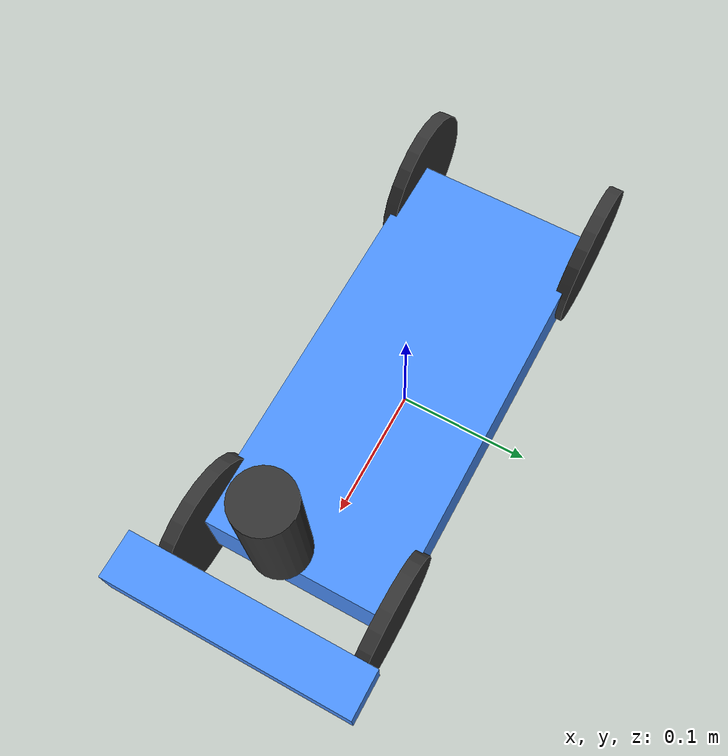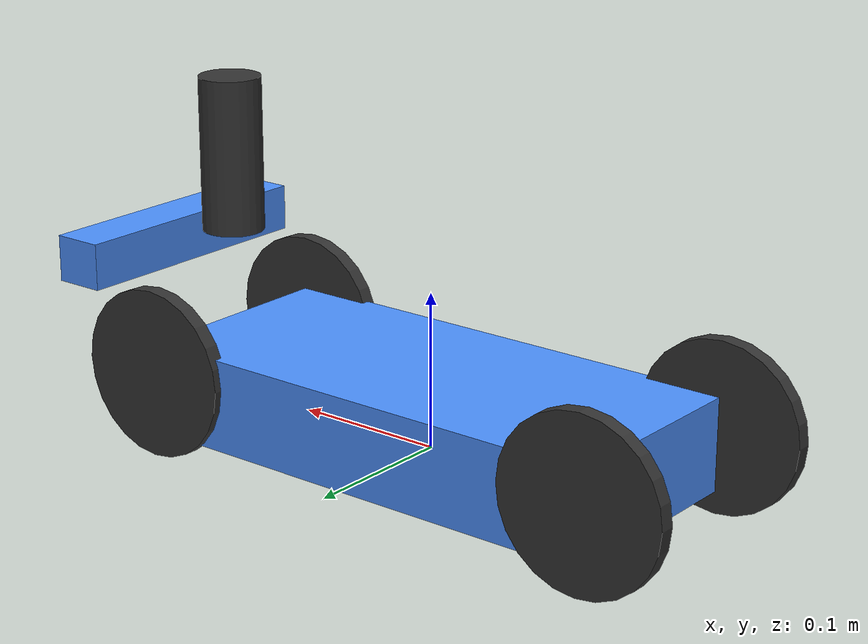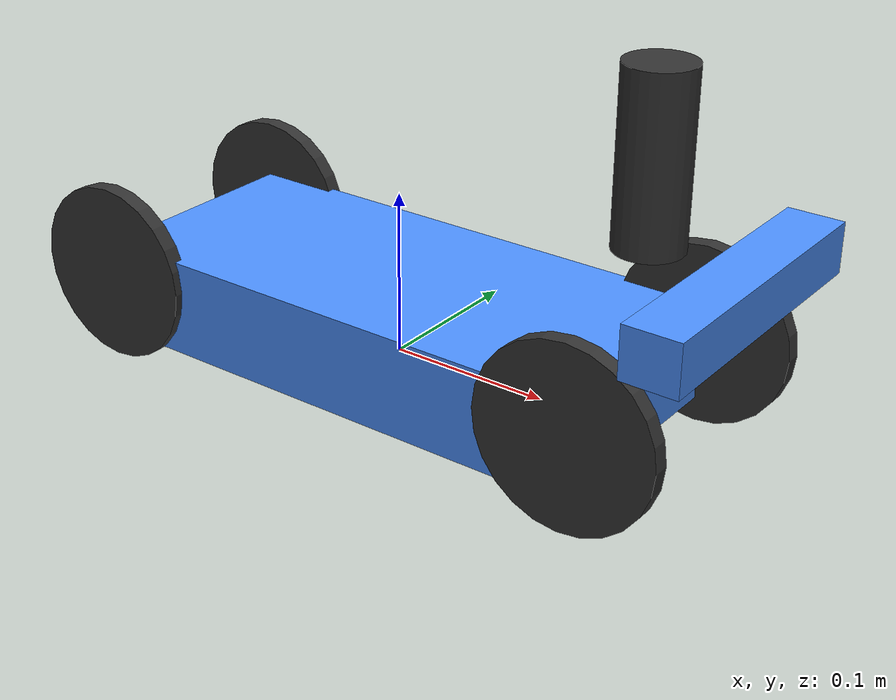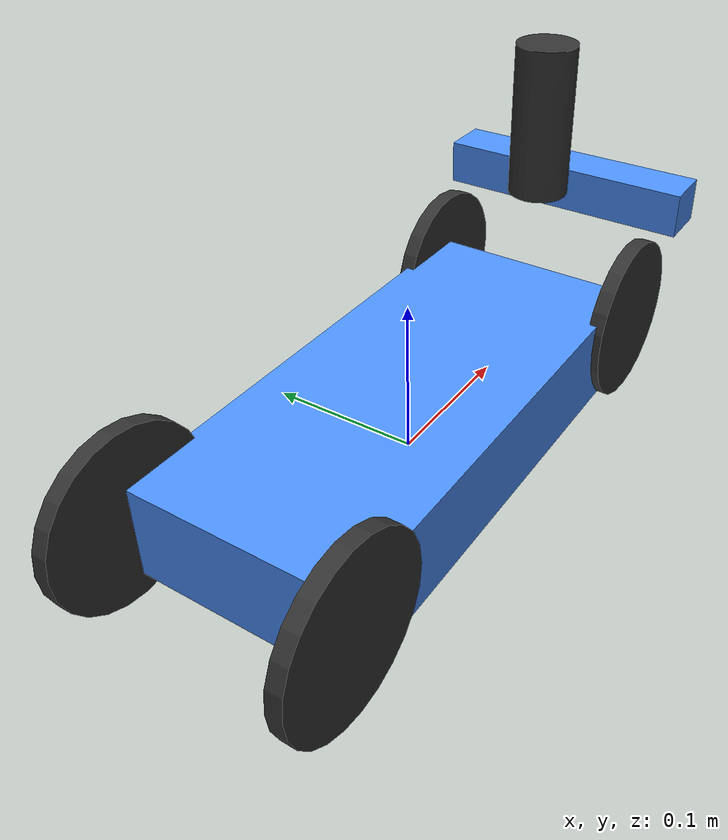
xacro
<?xml version="1.0"?>

<!-- A simple model of the racecar for rviz -->

<robot xmlns:xacro="http://www.ros.org/wiki/xacro" name="racecar">

  <xacro:property name="wheelbase" value="0.324" />
  <xacro:property name="width" value="0.145" />
  <xacro:property name="height" value="0.06" />
  <xacro:property name="ground_offset" value="0.022" />
  <xacro:property name="wheel_radius" value="0.05475" />
  <xacro:property name="wheel_length" value="0.01" />
  <xacro:property name="laser_height" value="0.1" />
  <xacro:property name="laser_radius" value="0.02" />
  <xacro:property name="camera_height" value="0.12" />
  <xacro:property name="camera_length" value="0.052" />
  <xacro:property name="car_name" value="racecar" />

  <material name="black">
    <color rgba="0.2 0.2 0.2 1."/>
  </material>

  <material name="blue">
    <color rgba="0.3 0.57 1. 1."/>
  </material>

  <link name="base_link">
    <visual>
      <origin xyz="0 0 ${ground_offset}"/>
      <geometry>
        <box size="${wheelbase} ${width} ${height}"/>
      </geometry>
      <material name="blue"/>
    </visual>
  </link>

  <joint name="base_joint" type="fixed">
    <parent link="base_link"/>
    <child link="base_footprint" />
    <origin xyz="0 0 ${-ground_offset}" rpy="0 0 0"/>
  </joint>

  <link name="base_footprint"/>

  <joint name="laser_joint" type="fixed">
    <parent link="base_link"/>
    <child link="laser"/>
    <origin xyz="${wheelbase/2} 0 ${(height+laser_height)}"/>
  </joint>

  <link name="laser">
    <visual>
      <geometry>
        <cylinder radius="${laser_radius}" length="${laser_height}"/>
      </geometry>
      <material name="black"/>
    </visual>
  </link>

  <joint name="base_to_left_rear_wheel" type="fixed">
    <parent link="base_link"/>
    <child link="left_rear_wheel"/>
    <origin xyz="${-wheelbase/2} ${(width)/2} ${wheel_radius-ground_offset}"/>
  </joint>

  <link name="left_rear_wheel">
    <visual>
      <geometry>
        <cylinder radius="${wheel_radius}" length="${wheel_length}"/>
      </geometry>
      <material name="black"/>
      <origin rpy="${pi/2} 0 0"/>
    </visual>
  </link>

  <joint name="base_to_right_rear_wheel" type="fixed">
    <parent link="base_link"/>
    <child link="right_rear_wheel"/>
    <origin xyz="${-wheelbase/2} ${-(width)/2} ${wheel_radius-ground_offset}"/>
  </joint>

  <link name="right_rear_wheel">
    <visual>
      <geometry>
        <cylinder radius="${wheel_radius}" length="${wheel_length}"/>
      </geometry>
      <material name="black"/>
      <origin rpy="${pi/2} 0 0"/>
    </visual>
  </link>

  <joint name="base_to_left_steering_hinge" type="fixed">
    <parent link="base_link"/>
    <child link="left_steering_hinge"/>
    <origin xyz="${wheelbase/2} ${(width)/2} ${wheel_radius-ground_offset}"/>
  </joint>

  <link name="left_steering_hinge"/>

  <joint name="left_steering_hinge_to_wheel" type="continuous">
    <parent link="left_steering_hinge"/>
    <child link="left_front_wheel"/>
  </joint>

  <link name="left_front_wheel">
    <visual>
      <geometry>
        <cylinder radius="${wheel_radius}" length="${wheel_length}"/>
      </geometry>
      <material name="black"/>
      <origin rpy="${pi/2} 0 0"/>
    </visual>
  </link>

  <joint name="base_to_right_steering_hinge" type="fixed">
    <parent link="base_link"/>
    <child link="right_steering_hinge"/>
    <origin xyz="${wheelbase/2} ${-(width)/2} ${wheel_radius-ground_offset}"/>
  </joint>

  <link name="right_steering_hinge"/>

  <joint name="right_steering_hinge_to_wheel" type="continuous">
    <parent link="right_steering_hinge"/>
    <child link="right_front_wheel"/>
  </joint>

  <link name="right_front_wheel">
    <visual>
      <geometry>
        <cylinder radius="${wheel_radius}" length="${wheel_length}"/>
      </geometry>
      <material name="black"/>
      <origin rpy="${pi/2} 0 0"/>
    </visual>
  </link>

  <!-- IMU-->
  <joint name="imu_joint" type="fixed">
    <parent link="base_link"/>
    <child link="imu_link"/>
    <origin xyz="${-wheelbase/2} 0 ${height}" rpy="0 0 0"/>
  </joint>

  <link name="imu_link"/>

  <!-- Camera -->
  <joint name="camera_joint" type="fixed">
    <parent link="base_link"/>
    <child link="camera_link"/>
    <origin xyz="${wheelbase/2 + camera_length} 0 ${camera_height-ground_offset}" rpy="0 0 0"/>
  </joint>

  <link name="camera_link"/>

  <joint name="realsense_camera_joint" type="fixed">
    <origin xyz="0 0 0" rpy="0 0 0"/>
    <parent link="camera_link"/>
    <child link="realsense_camera_link"/>
    <axis xyz="0 0 1" />
  </joint>

  <!-- realsense camera -->
  <link name="realsense_camera_link">
    <inertial>
      <mass value="1e-5" />
      <origin xyz="0 0 0" rpy="0 0 0"/>
      <inertia ixx="1e-6" ixy="0" ixz="0" iyy="1e-6" iyz="0" izz="1e-6" />
    </inertial>
    <collision>
      <origin xyz="0 0 0" rpy="0 0 0"/>
      <geometry>
        <box size="0.033 0.175 0.030"/>
      </geometry>
    </collision>
    <visual>
      <origin xyz="0 0 0" rpy="0 0 0"/>
      <geometry>
        <box size="0.033 0.175 0.030"/>
      </geometry>
      <material name="blue"/>
    </visual>
  </link>

<!-- xacros -->

</robot>
